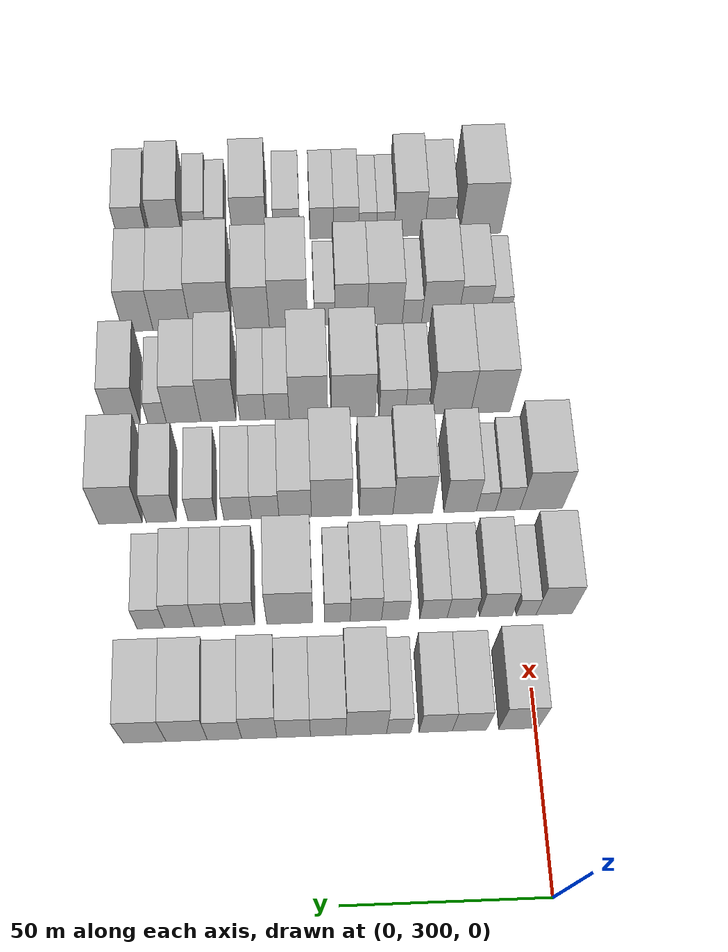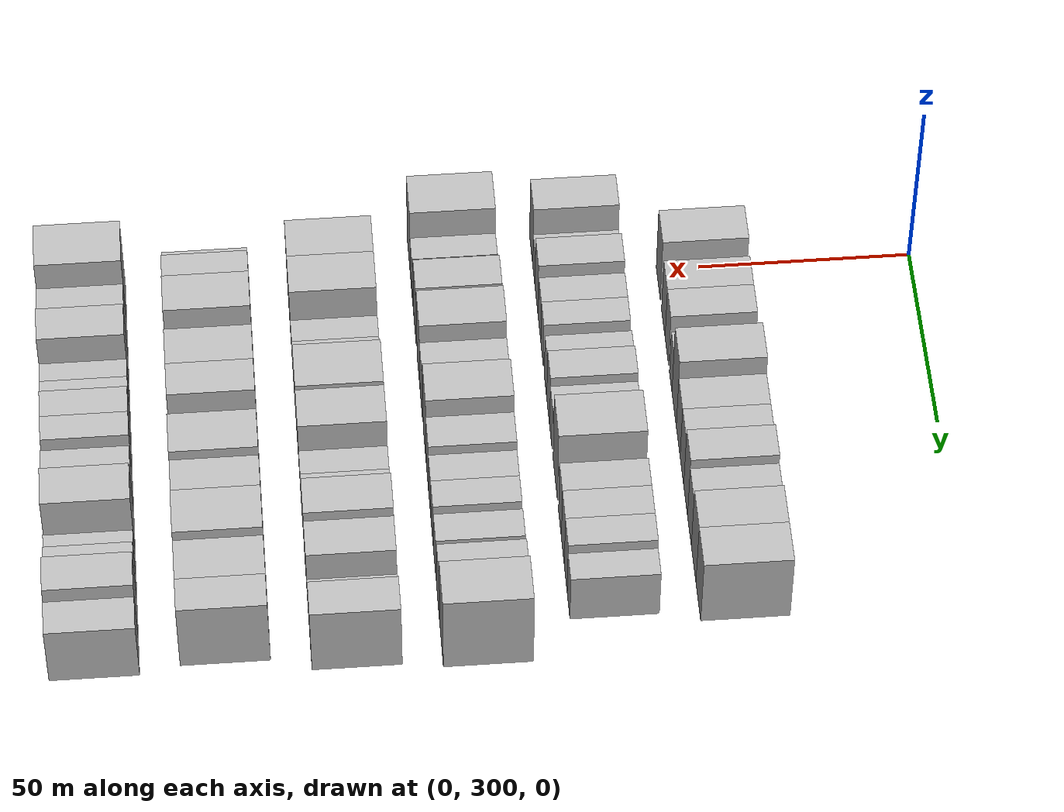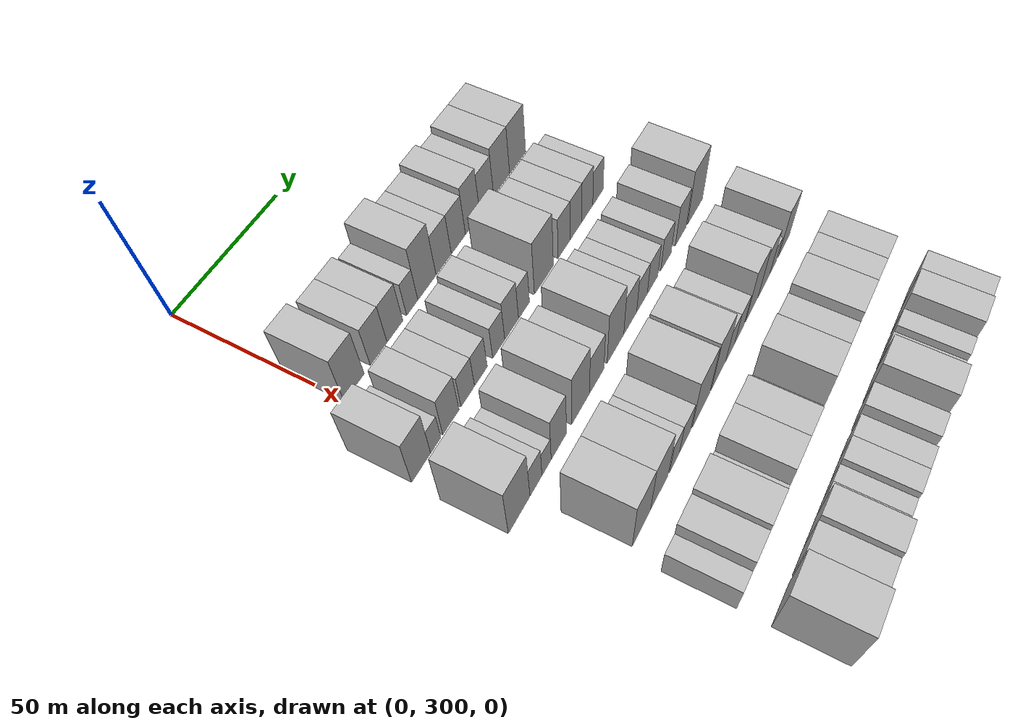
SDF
<sdf version="1.6">
 <world name="default">
  <model name="building_86">
   <static>1</static>
   <pose>50.0000 304.2999 0 0.000000 0.000000 0.000000</pose>
   <link name="link">
    <pose>0 0 10.50 0 0 0</pose>
    <collision name="collision"><geometry><box><size>20.0000 9.7754 21.0000</size></box></geometry></collision>
    <visual name="visual">
     <cast_shadows>0</cast_shadows>
     <geometry><box><size>20.0000 9.7754 21.0000</size></box></geometry>
     <material>
      <script>
       <uri>model://HANNAS_wall/materials/scripts</uri>
       <uri>model://HANNAS_wall/materials/textures</uri>
       <name>vrc/HANNAS_wall</name>
      </script>
     </material>
    </visual>
   </link>
  </model>
  <model name="building_87">
   <static>1</static>
   <pose>50.0000 316.4137 0 0.000000 0.000000 0.000000</pose>
   <link name="link">
    <pose>0 0 9.00 0 0 0</pose>
    <collision name="collision"><geometry><box><size>20.0000 8.4521 18.0000</size></box></geometry></collision>
    <visual name="visual">
     <cast_shadows>0</cast_shadows>
     <geometry><box><size>20.0000 8.4521 18.0000</size></box></geometry>
     <material>
      <script>
       <uri>model://HANNAS_wall/materials/scripts</uri>
       <uri>model://HANNAS_wall/materials/textures</uri>
       <name>vrc/HANNAS_wall</name>
      </script>
     </material>
    </visual>
   </link>
  </model>
  <model name="building_88">
   <static>1</static>
   <pose>50.0000 324.7240 0 0.000000 0.000000 0.000000</pose>
   <link name="link">
    <pose>0 0 9.00 0 0 0</pose>
    <collision name="collision"><geometry><box><size>20.0000 8.1686 18.0000</size></box></geometry></collision>
    <visual name="visual">
     <cast_shadows>0</cast_shadows>
     <geometry><box><size>20.0000 8.1686 18.0000</size></box></geometry>
     <material>
      <script>
       <uri>model://HANNAS_wall/materials/scripts</uri>
       <uri>model://HANNAS_wall/materials/textures</uri>
       <name>vrc/HANNAS_wall</name>
      </script>
     </material>
    </visual>
   </link>
  </model>
  <model name="building_89">
   <static>1</static>
   <pose>50.0000 333.8086 0 0.000000 0.000000 0.000000</pose>
   <link name="link">
    <pose>0 0 7.50 0 0 0</pose>
    <collision name="collision"><geometry><box><size>20.0000 6.0006 15.0000</size></box></geometry></collision>
    <visual name="visual">
     <cast_shadows>0</cast_shadows>
     <geometry><box><size>20.0000 6.0006 15.0000</size></box></geometry>
     <material>
      <script>
       <uri>model://HANNAS_wall/materials/scripts</uri>
       <uri>model://HANNAS_wall/materials/textures</uri>
       <name>vrc/HANNAS_wall</name>
      </script>
     </material>
    </visual>
   </link>
  </model>
  <model name="building_90">
   <static>1</static>
   <pose>50.0000 341.8027 0 0.000000 0.000000 0.000000</pose>
   <link name="link">
    <pose>0 0 12.00 0 0 0</pose>
    <collision name="collision"><geometry><box><size>20.0000 9.9874 24.0000</size></box></geometry></collision>
    <visual name="visual">
     <cast_shadows>0</cast_shadows>
     <geometry><box><size>20.0000 9.9874 24.0000</size></box></geometry>
     <material>
      <script>
       <uri>model://HANNAS_wall/materials/scripts</uri>
       <uri>model://HANNAS_wall/materials/textures</uri>
       <name>vrc/HANNAS_wall</name>
      </script>
     </material>
    </visual>
   </link>
  </model>
  <model name="building_91">
   <static>1</static>
   <pose>50.0000 351.1413 0 0.000000 0.000000 0.000000</pose>
   <link name="link">
    <pose>0 0 9.00 0 0 0</pose>
    <collision name="collision"><geometry><box><size>20.0000 8.6898 18.0000</size></box></geometry></collision>
    <visual name="visual">
     <cast_shadows>0</cast_shadows>
     <geometry><box><size>20.0000 8.6898 18.0000</size></box></geometry>
     <material>
      <script>
       <uri>model://HANNAS_wall/materials/scripts</uri>
       <uri>model://HANNAS_wall/materials/textures</uri>
       <name>vrc/HANNAS_wall</name>
      </script>
     </material>
    </visual>
   </link>
  </model>
  <model name="building_92">
   <static>1</static>
   <pose>50.0000 359.5965 0 0.000000 0.000000 0.000000</pose>
   <link name="link">
    <pose>0 0 9.00 0 0 0</pose>
    <collision name="collision"><geometry><box><size>20.0000 8.2205 18.0000</size></box></geometry></collision>
    <visual name="visual">
     <cast_shadows>0</cast_shadows>
     <geometry><box><size>20.0000 8.2205 18.0000</size></box></geometry>
     <material>
      <script>
       <uri>model://HANNAS_wall/materials/scripts</uri>
       <uri>model://HANNAS_wall/materials/textures</uri>
       <name>vrc/HANNAS_wall</name>
      </script>
     </material>
    </visual>
   </link>
  </model>
  <model name="building_93">
   <static>1</static>
   <pose>50.0000 368.0203 0 0.000000 0.000000 0.000000</pose>
   <link name="link">
    <pose>0 0 10.50 0 0 0</pose>
    <collision name="collision"><geometry><box><size>20.0000 8.6271 21.0000</size></box></geometry></collision>
    <visual name="visual">
     <cast_shadows>0</cast_shadows>
     <geometry><box><size>20.0000 8.6271 21.0000</size></box></geometry>
     <material>
      <script>
       <uri>model://HANNAS_wall/materials/scripts</uri>
       <uri>model://HANNAS_wall/materials/textures</uri>
       <name>vrc/HANNAS_wall</name>
      </script>
     </material>
    </visual>
   </link>
  </model>
  <model name="building_94">
   <static>1</static>
   <pose>50.0000 376.5453 0 0.000000 0.000000 0.000000</pose>
   <link name="link">
    <pose>0 0 9.00 0 0 0</pose>
    <collision name="collision"><geometry><box><size>20.0000 8.4230 18.0000</size></box></geometry></collision>
    <visual name="visual">
     <cast_shadows>0</cast_shadows>
     <geometry><box><size>20.0000 8.4230 18.0000</size></box></geometry>
     <material>
      <script>
       <uri>model://HANNAS_wall/materials/scripts</uri>
       <uri>model://HANNAS_wall/materials/textures</uri>
       <name>vrc/HANNAS_wall</name>
      </script>
     </material>
    </visual>
   </link>
  </model>
  <model name="building_95">
   <static>1</static>
   <pose>50.0000 385.8042 0 0.000000 0.000000 0.000000</pose>
   <link name="link">
    <pose>0 0 10.50 0 0 0</pose>
    <collision name="collision"><geometry><box><size>20.0000 10.0947 21.0000</size></box></geometry></collision>
    <visual name="visual">
     <cast_shadows>0</cast_shadows>
     <geometry><box><size>20.0000 10.0947 21.0000</size></box></geometry>
     <material>
      <script>
       <uri>model://HANNAS_wall/materials/scripts</uri>
       <uri>model://HANNAS_wall/materials/textures</uri>
       <name>vrc/HANNAS_wall</name>
      </script>
     </material>
    </visual>
   </link>
  </model>
  <model name="building_96">
   <static>1</static>
   <pose>50.0000 396.0586 0 0.000000 0.000000 0.000000</pose>
   <link name="link">
    <pose>0 0 10.50 0 0 0</pose>
    <collision name="collision"><geometry><box><size>20.0000 10.4143 21.0000</size></box></geometry></collision>
    <visual name="visual">
     <cast_shadows>0</cast_shadows>
     <geometry><box><size>20.0000 10.4143 21.0000</size></box></geometry>
     <material>
      <script>
       <uri>model://HANNAS_wall/materials/scripts</uri>
       <uri>model://HANNAS_wall/materials/textures</uri>
       <name>vrc/HANNAS_wall</name>
      </script>
     </material>
    </visual>
   </link>
  </model>
  <model name="building_195">
   <static>1</static>
   <pose>79.0000 292.4236 0 0.000000 0.000000 0.000000</pose>
   <link name="link">
    <pose>0 0 10.50 0 0 0</pose>
    <collision name="collision"><geometry><box><size>20.0000 9.3064 21.0000</size></box></geometry></collision>
    <visual name="visual">
     <cast_shadows>0</cast_shadows>
     <geometry><box><size>20.0000 9.3064 21.0000</size></box></geometry>
     <material>
      <script>
       <uri>model://HANNAS_wall/materials/scripts</uri>
       <uri>model://HANNAS_wall/materials/textures</uri>
       <name>vrc/HANNAS_wall</name>
      </script>
     </material>
    </visual>
   </link>
  </model>
  <model name="building_196">
   <static>1</static>
   <pose>79.0000 299.6232 0 0.000000 0.000000 0.000000</pose>
   <link name="link">
    <pose>0 0 6.00 0 0 0</pose>
    <collision name="collision"><geometry><box><size>20.0000 5.0929 12.0000</size></box></geometry></collision>
    <visual name="visual">
     <cast_shadows>0</cast_shadows>
     <geometry><box><size>20.0000 5.0929 12.0000</size></box></geometry>
     <material>
      <script>
       <uri>model://HANNAS_wall/materials/scripts</uri>
       <uri>model://HANNAS_wall/materials/textures</uri>
       <name>vrc/HANNAS_wall</name>
      </script>
     </material>
    </visual>
   </link>
  </model>
  <model name="building_197">
   <static>1</static>
   <pose>79.0000 307.3572 0 0.000000 0.000000 0.000000</pose>
   <link name="link">
    <pose>0 0 9.00 0 0 0</pose>
    <collision name="collision"><geometry><box><size>20.0000 8.3751 18.0000</size></box></geometry></collision>
    <visual name="visual">
     <cast_shadows>0</cast_shadows>
     <geometry><box><size>20.0000 8.3751 18.0000</size></box></geometry>
     <material>
      <script>
       <uri>model://HANNAS_wall/materials/scripts</uri>
       <uri>model://HANNAS_wall/materials/textures</uri>
       <name>vrc/HANNAS_wall</name>
      </script>
     </material>
    </visual>
   </link>
  </model>
  <model name="building_198">
   <static>1</static>
   <pose>79.0000 316.1642 0 0.000000 0.000000 0.000000</pose>
   <link name="link">
    <pose>0 0 7.50 0 0 0</pose>
    <collision name="collision"><geometry><box><size>20.0000 7.2389 15.0000</size></box></geometry></collision>
    <visual name="visual">
     <cast_shadows>0</cast_shadows>
     <geometry><box><size>20.0000 7.2389 15.0000</size></box></geometry>
     <material>
      <script>
       <uri>model://HANNAS_wall/materials/scripts</uri>
       <uri>model://HANNAS_wall/materials/textures</uri>
       <name>vrc/HANNAS_wall</name>
      </script>
     </material>
    </visual>
   </link>
  </model>
  <model name="building_199">
   <static>1</static>
   <pose>79.0000 323.2589 0 0.000000 0.000000 0.000000</pose>
   <link name="link">
    <pose>0 0 7.50 0 0 0</pose>
    <collision name="collision"><geometry><box><size>20.0000 6.9505 15.0000</size></box></geometry></collision>
    <visual name="visual">
     <cast_shadows>0</cast_shadows>
     <geometry><box><size>20.0000 6.9505 15.0000</size></box></geometry>
     <material>
      <script>
       <uri>model://HANNAS_wall/materials/scripts</uri>
       <uri>model://HANNAS_wall/materials/textures</uri>
       <name>vrc/HANNAS_wall</name>
      </script>
     </material>
    </visual>
   </link>
  </model>
  <model name="building_200">
   <static>1</static>
   <pose>79.0000 333.1374 0 0.000000 0.000000 0.000000</pose>
   <link name="link">
    <pose>0 0 7.50 0 0 0</pose>
    <collision name="collision"><geometry><box><size>20.0000 6.8064 15.0000</size></box></geometry></collision>
    <visual name="visual">
     <cast_shadows>0</cast_shadows>
     <geometry><box><size>20.0000 6.8064 15.0000</size></box></geometry>
     <material>
      <script>
       <uri>model://HANNAS_wall/materials/scripts</uri>
       <uri>model://HANNAS_wall/materials/textures</uri>
       <name>vrc/HANNAS_wall</name>
      </script>
     </material>
    </visual>
   </link>
  </model>
  <model name="building_201">
   <static>1</static>
   <pose>79.0000 340.5213 0 0.000000 0.000000 0.000000</pose>
   <link name="link">
    <pose>0 0 9.00 0 0 0</pose>
    <collision name="collision"><geometry><box><size>20.0000 7.9613 18.0000</size></box></geometry></collision>
    <visual name="visual">
     <cast_shadows>0</cast_shadows>
     <geometry><box><size>20.0000 7.9613 18.0000</size></box></geometry>
     <material>
      <script>
       <uri>model://HANNAS_wall/materials/scripts</uri>
       <uri>model://HANNAS_wall/materials/textures</uri>
       <name>vrc/HANNAS_wall</name>
      </script>
     </material>
    </visual>
   </link>
  </model>
  <model name="building_202">
   <static>1</static>
   <pose>79.0000 347.7429 0 0.000000 0.000000 0.000000</pose>
   <link name="link">
    <pose>0 0 7.50 0 0 0</pose>
    <collision name="collision"><geometry><box><size>20.0000 6.4820 15.0000</size></box></geometry></collision>
    <visual name="visual">
     <cast_shadows>0</cast_shadows>
     <geometry><box><size>20.0000 6.4820 15.0000</size></box></geometry>
     <material>
      <script>
       <uri>model://HANNAS_wall/materials/scripts</uri>
       <uri>model://HANNAS_wall/materials/textures</uri>
       <name>vrc/HANNAS_wall</name>
      </script>
     </material>
    </visual>
   </link>
  </model>
  <model name="building_203">
   <static>1</static>
   <pose>79.0000 359.8309 0 0.000000 0.000000 0.000000</pose>
   <link name="link">
    <pose>0 0 12.00 0 0 0</pose>
    <collision name="collision"><geometry><box><size>20.0000 11.6941 24.0000</size></box></geometry></collision>
    <visual name="visual">
     <cast_shadows>0</cast_shadows>
     <geometry><box><size>20.0000 11.6941 24.0000</size></box></geometry>
     <material>
      <script>
       <uri>model://HANNAS_wall/materials/scripts</uri>
       <uri>model://HANNAS_wall/materials/textures</uri>
       <name>vrc/HANNAS_wall</name>
      </script>
     </material>
    </visual>
   </link>
  </model>
  <model name="building_204">
   <static>1</static>
   <pose>79.0000 372.4950 0 0.000000 0.000000 0.000000</pose>
   <link name="link">
    <pose>0 0 9.00 0 0 0</pose>
    <collision name="collision"><geometry><box><size>20.0000 7.6340 18.0000</size></box></geometry></collision>
    <visual name="visual">
     <cast_shadows>0</cast_shadows>
     <geometry><box><size>20.0000 7.6340 18.0000</size></box></geometry>
     <material>
      <script>
       <uri>model://HANNAS_wall/materials/scripts</uri>
       <uri>model://HANNAS_wall/materials/textures</uri>
       <name>vrc/HANNAS_wall</name>
      </script>
     </material>
    </visual>
   </link>
  </model>
  <model name="building_205">
   <static>1</static>
   <pose>79.0000 380.1694 0 0.000000 0.000000 0.000000</pose>
   <link name="link">
    <pose>0 0 9.00 0 0 0</pose>
    <collision name="collision"><geometry><box><size>20.0000 7.7148 18.0000</size></box></geometry></collision>
    <visual name="visual">
     <cast_shadows>0</cast_shadows>
     <geometry><box><size>20.0000 7.7148 18.0000</size></box></geometry>
     <material>
      <script>
       <uri>model://HANNAS_wall/materials/scripts</uri>
       <uri>model://HANNAS_wall/materials/textures</uri>
       <name>vrc/HANNAS_wall</name>
      </script>
     </material>
    </visual>
   </link>
  </model>
  <model name="building_206">
   <static>1</static>
   <pose>79.0000 387.7678 0 0.000000 0.000000 0.000000</pose>
   <link name="link">
    <pose>0 0 9.00 0 0 0</pose>
    <collision name="collision"><geometry><box><size>20.0000 7.4821 18.0000</size></box></geometry></collision>
    <visual name="visual">
     <cast_shadows>0</cast_shadows>
     <geometry><box><size>20.0000 7.4821 18.0000</size></box></geometry>
     <material>
      <script>
       <uri>model://HANNAS_wall/materials/scripts</uri>
       <uri>model://HANNAS_wall/materials/textures</uri>
       <name>vrc/HANNAS_wall</name>
      </script>
     </material>
    </visual>
   </link>
  </model>
  <model name="building_207">
   <static>1</static>
   <pose>79.0000 395.0635 0 0.000000 0.000000 0.000000</pose>
   <link name="link">
    <pose>0 0 7.50 0 0 0</pose>
    <collision name="collision"><geometry><box><size>20.0000 7.1094 15.0000</size></box></geometry></collision>
    <visual name="visual">
     <cast_shadows>0</cast_shadows>
     <geometry><box><size>20.0000 7.1094 15.0000</size></box></geometry>
     <material>
      <script>
       <uri>model://HANNAS_wall/materials/scripts</uri>
       <uri>model://HANNAS_wall/materials/textures</uri>
       <name>vrc/HANNAS_wall</name>
      </script>
     </material>
    </visual>
   </link>
  </model>
  <model name="building_310">
   <static>1</static>
   <pose>108.0000 292.7920 0 0.000000 0.000000 0.000000</pose>
   <link name="link">
    <pose>0 0 12.00 0 0 0</pose>
    <collision name="collision"><geometry><box><size>20.0000 11.2679 24.0000</size></box></geometry></collision>
    <visual name="visual">
     <cast_shadows>0</cast_shadows>
     <geometry><box><size>20.0000 11.2679 24.0000</size></box></geometry>
     <material>
      <script>
       <uri>model://HANNAS_wall/materials/scripts</uri>
       <uri>model://HANNAS_wall/materials/textures</uri>
       <name>vrc/HANNAS_wall</name>
      </script>
     </material>
    </visual>
   </link>
  </model>
  <model name="building_311">
   <static>1</static>
   <pose>108.0000 301.6471 0 0.000000 0.000000 0.000000</pose>
   <link name="link">
    <pose>0 0 7.50 0 0 0</pose>
    <collision name="collision"><geometry><box><size>20.0000 6.4422 15.0000</size></box></geometry></collision>
    <visual name="visual">
     <cast_shadows>0</cast_shadows>
     <geometry><box><size>20.0000 6.4422 15.0000</size></box></geometry>
     <material>
      <script>
       <uri>model://HANNAS_wall/materials/scripts</uri>
       <uri>model://HANNAS_wall/materials/textures</uri>
       <name>vrc/HANNAS_wall</name>
      </script>
     </material>
    </visual>
   </link>
  </model>
  <model name="building_312">
   <static>1</static>
   <pose>108.0000 307.4107 0 0.000000 0.000000 0.000000</pose>
   <link name="link">
    <pose>0 0 6.00 0 0 0</pose>
    <collision name="collision"><geometry><box><size>20.0000 5.0852 12.0000</size></box></geometry></collision>
    <visual name="visual">
     <cast_shadows>0</cast_shadows>
     <geometry><box><size>20.0000 5.0852 12.0000</size></box></geometry>
     <material>
      <script>
       <uri>model://HANNAS_wall/materials/scripts</uri>
       <uri>model://HANNAS_wall/materials/textures</uri>
       <name>vrc/HANNAS_wall</name>
      </script>
     </material>
    </visual>
   </link>
  </model>
  <model name="building_313">
   <static>1</static>
   <pose>108.0000 314.2510 0 0.000000 0.000000 0.000000</pose>
   <link name="link">
    <pose>0 0 10.50 0 0 0</pose>
    <collision name="collision"><geometry><box><size>20.0000 8.5954 21.0000</size></box></geometry></collision>
    <visual name="visual">
     <cast_shadows>0</cast_shadows>
     <geometry><box><size>20.0000 8.5954 21.0000</size></box></geometry>
     <material>
      <script>
       <uri>model://HANNAS_wall/materials/scripts</uri>
       <uri>model://HANNAS_wall/materials/textures</uri>
       <name>vrc/HANNAS_wall</name>
      </script>
     </material>
    </visual>
   </link>
  </model>
  <model name="building_314">
   <static>1</static>
   <pose>108.0000 326.7822 0 0.000000 0.000000 0.000000</pose>
   <link name="link">
    <pose>0 0 12.00 0 0 0</pose>
    <collision name="collision"><geometry><box><size>20.0000 10.4669 24.0000</size></box></geometry></collision>
    <visual name="visual">
     <cast_shadows>0</cast_shadows>
     <geometry><box><size>20.0000 10.4669 24.0000</size></box></geometry>
     <material>
      <script>
       <uri>model://HANNAS_wall/materials/scripts</uri>
       <uri>model://HANNAS_wall/materials/textures</uri>
       <name>vrc/HANNAS_wall</name>
      </script>
     </material>
    </visual>
   </link>
  </model>
  <model name="building_315">
   <static>1</static>
   <pose>108.0000 336.4530 0 0.000000 0.000000 0.000000</pose>
   <link name="link">
    <pose>0 0 9.00 0 0 0</pose>
    <collision name="collision"><geometry><box><size>20.0000 8.8747 18.0000</size></box></geometry></collision>
    <visual name="visual">
     <cast_shadows>0</cast_shadows>
     <geometry><box><size>20.0000 8.8747 18.0000</size></box></geometry>
     <material>
      <script>
       <uri>model://HANNAS_wall/materials/scripts</uri>
       <uri>model://HANNAS_wall/materials/textures</uri>
       <name>vrc/HANNAS_wall</name>
      </script>
     </material>
    </visual>
   </link>
  </model>
  <model name="building_316">
   <static>1</static>
   <pose>108.0000 348.1840 0 0.000000 0.000000 0.000000</pose>
   <link name="link">
    <pose>0 0 12.00 0 0 0</pose>
    <collision name="collision"><geometry><box><size>20.0000 10.5873 24.0000</size></box></geometry></collision>
    <visual name="visual">
     <cast_shadows>0</cast_shadows>
     <geometry><box><size>20.0000 10.5873 24.0000</size></box></geometry>
     <material>
      <script>
       <uri>model://HANNAS_wall/materials/scripts</uri>
       <uri>model://HANNAS_wall/materials/textures</uri>
       <name>vrc/HANNAS_wall</name>
      </script>
     </material>
    </visual>
   </link>
  </model>
  <model name="building_317">
   <static>1</static>
   <pose>108.0000 357.7196 0 0.000000 0.000000 0.000000</pose>
   <link name="link">
    <pose>0 0 9.00 0 0 0</pose>
    <collision name="collision"><geometry><box><size>20.0000 8.4839 18.0000</size></box></geometry></collision>
    <visual name="visual">
     <cast_shadows>0</cast_shadows>
     <geometry><box><size>20.0000 8.4839 18.0000</size></box></geometry>
     <material>
      <script>
       <uri>model://HANNAS_wall/materials/scripts</uri>
       <uri>model://HANNAS_wall/materials/textures</uri>
       <name>vrc/HANNAS_wall</name>
      </script>
     </material>
    </visual>
   </link>
  </model>
  <model name="building_318">
   <static>1</static>
   <pose>108.0000 365.5766 0 0.000000 0.000000 0.000000</pose>
   <link name="link">
    <pose>0 0 7.50 0 0 0</pose>
    <collision name="collision"><geometry><box><size>20.0000 7.2301 15.0000</size></box></geometry></collision>
    <visual name="visual">
     <cast_shadows>0</cast_shadows>
     <geometry><box><size>20.0000 7.2301 15.0000</size></box></geometry>
     <material>
      <script>
       <uri>model://HANNAS_wall/materials/scripts</uri>
       <uri>model://HANNAS_wall/materials/textures</uri>
       <name>vrc/HANNAS_wall</name>
      </script>
     </material>
    </visual>
   </link>
  </model>
  <model name="building_319">
   <static>1</static>
   <pose>108.0000 372.8271 0 0.000000 0.000000 0.000000</pose>
   <link name="link">
    <pose>0 0 7.50 0 0 0</pose>
    <collision name="collision"><geometry><box><size>20.0000 7.2710 15.0000</size></box></geometry></collision>
    <visual name="visual">
     <cast_shadows>0</cast_shadows>
     <geometry><box><size>20.0000 7.2710 15.0000</size></box></geometry>
     <material>
      <script>
       <uri>model://HANNAS_wall/materials/scripts</uri>
       <uri>model://HANNAS_wall/materials/textures</uri>
       <name>vrc/HANNAS_wall</name>
      </script>
     </material>
    </visual>
   </link>
  </model>
  <model name="building_320">
   <static>1</static>
   <pose>108.0000 382.1943 0 0.000000 0.000000 0.000000</pose>
   <link name="link">
    <pose>0 0 7.50 0 0 0</pose>
    <collision name="collision"><geometry><box><size>20.0000 7.4633 15.0000</size></box></geometry></collision>
    <visual name="visual">
     <cast_shadows>0</cast_shadows>
     <geometry><box><size>20.0000 7.4633 15.0000</size></box></geometry>
     <material>
      <script>
       <uri>model://HANNAS_wall/materials/scripts</uri>
       <uri>model://HANNAS_wall/materials/textures</uri>
       <name>vrc/HANNAS_wall</name>
      </script>
     </material>
    </visual>
   </link>
  </model>
  <model name="building_321">
   <static>1</static>
   <pose>108.0000 392.9289 0 0.000000 0.000000 0.000000</pose>
   <link name="link">
    <pose>0 0 9.00 0 0 0</pose>
    <collision name="collision"><geometry><box><size>20.0000 8.0060 18.0000</size></box></geometry></collision>
    <visual name="visual">
     <cast_shadows>0</cast_shadows>
     <geometry><box><size>20.0000 8.0060 18.0000</size></box></geometry>
     <material>
      <script>
       <uri>model://HANNAS_wall/materials/scripts</uri>
       <uri>model://HANNAS_wall/materials/textures</uri>
       <name>vrc/HANNAS_wall</name>
      </script>
     </material>
    </visual>
   </link>
  </model>
  <model name="building_322">
   <static>1</static>
   <pose>108.0000 403.6546 0 0.000000 0.000000 0.000000</pose>
   <link name="link">
    <pose>0 0 12.00 0 0 0</pose>
    <collision name="collision"><geometry><box><size>20.0000 11.4454 24.0000</size></box></geometry></collision>
    <visual name="visual">
     <cast_shadows>0</cast_shadows>
     <geometry><box><size>20.0000 11.4454 24.0000</size></box></geometry>
     <material>
      <script>
       <uri>model://HANNAS_wall/materials/scripts</uri>
       <uri>model://HANNAS_wall/materials/textures</uri>
       <name>vrc/HANNAS_wall</name>
      </script>
     </material>
    </visual>
   </link>
  </model>
  <model name="building_421">
   <static>1</static>
   <pose>137.0000 303.7737 0 0.000000 0.000000 0.000000</pose>
   <link name="link">
    <pose>0 0 12.00 0 0 0</pose>
    <collision name="collision"><geometry><box><size>20.0000 10.7200 24.0000</size></box></geometry></collision>
    <visual name="visual">
     <cast_shadows>0</cast_shadows>
     <geometry><box><size>20.0000 10.7200 24.0000</size></box></geometry>
     <material>
      <script>
       <uri>model://HANNAS_wall/materials/scripts</uri>
       <uri>model://HANNAS_wall/materials/textures</uri>
       <name>vrc/HANNAS_wall</name>
      </script>
     </material>
    </visual>
   </link>
  </model>
  <model name="building_422">
   <static>1</static>
   <pose>137.0000 314.5030 0 0.000000 0.000000 0.000000</pose>
   <link name="link">
    <pose>0 0 12.00 0 0 0</pose>
    <collision name="collision"><geometry><box><size>20.0000 10.7385 24.0000</size></box></geometry></collision>
    <visual name="visual">
     <cast_shadows>0</cast_shadows>
     <geometry><box><size>20.0000 10.7385 24.0000</size></box></geometry>
     <material>
      <script>
       <uri>model://HANNAS_wall/materials/scripts</uri>
       <uri>model://HANNAS_wall/materials/textures</uri>
       <name>vrc/HANNAS_wall</name>
      </script>
     </material>
    </visual>
   </link>
  </model>
  <model name="building_423">
   <static>1</static>
   <pose>137.0000 323.9694 0 0.000000 0.000000 0.000000</pose>
   <link name="link">
    <pose>0 0 7.50 0 0 0</pose>
    <collision name="collision"><geometry><box><size>20.0000 6.1944 15.0000</size></box></geometry></collision>
    <visual name="visual">
     <cast_shadows>0</cast_shadows>
     <geometry><box><size>20.0000 6.1944 15.0000</size></box></geometry>
     <material>
      <script>
       <uri>model://HANNAS_wall/materials/scripts</uri>
       <uri>model://HANNAS_wall/materials/textures</uri>
       <name>vrc/HANNAS_wall</name>
      </script>
     </material>
    </visual>
   </link>
  </model>
  <model name="building_424">
   <static>1</static>
   <pose>137.0000 330.6239 0 0.000000 0.000000 0.000000</pose>
   <link name="link">
    <pose>0 0 7.50 0 0 0</pose>
    <collision name="collision"><geometry><box><size>20.0000 7.1146 15.0000</size></box></geometry></collision>
    <visual name="visual">
     <cast_shadows>0</cast_shadows>
     <geometry><box><size>20.0000 7.1146 15.0000</size></box></geometry>
     <material>
      <script>
       <uri>model://HANNAS_wall/materials/scripts</uri>
       <uri>model://HANNAS_wall/materials/textures</uri>
       <name>vrc/HANNAS_wall</name>
      </script>
     </material>
    </visual>
   </link>
  </model>
  <model name="building_425">
   <static>1</static>
   <pose>137.0000 341.1803 0 0.000000 0.000000 0.000000</pose>
   <link name="link">
    <pose>0 0 12.00 0 0 0</pose>
    <collision name="collision"><geometry><box><size>20.0000 11.9981 24.0000</size></box></geometry></collision>
    <visual name="visual">
     <cast_shadows>0</cast_shadows>
     <geometry><box><size>20.0000 11.9981 24.0000</size></box></geometry>
     <material>
      <script>
       <uri>model://HANNAS_wall/materials/scripts</uri>
       <uri>model://HANNAS_wall/materials/textures</uri>
       <name>vrc/HANNAS_wall</name>
      </script>
     </material>
    </visual>
   </link>
  </model>
  <model name="building_426">
   <static>1</static>
   <pose>137.0000 353.3787 0 0.000000 0.000000 0.000000</pose>
   <link name="link">
    <pose>0 0 12.00 0 0 0</pose>
    <collision name="collision"><geometry><box><size>20.0000 10.3987 24.0000</size></box></geometry></collision>
    <visual name="visual">
     <cast_shadows>0</cast_shadows>
     <geometry><box><size>20.0000 10.3987 24.0000</size></box></geometry>
     <material>
      <script>
       <uri>model://HANNAS_wall/materials/scripts</uri>
       <uri>model://HANNAS_wall/materials/textures</uri>
       <name>vrc/HANNAS_wall</name>
      </script>
     </material>
    </visual>
   </link>
  </model>
  <model name="building_427">
   <static>1</static>
   <pose>137.0000 361.8306 0 0.000000 0.000000 0.000000</pose>
   <link name="link">
    <pose>0 0 7.50 0 0 0</pose>
    <collision name="collision"><geometry><box><size>20.0000 6.5052 15.0000</size></box></geometry></collision>
    <visual name="visual">
     <cast_shadows>0</cast_shadows>
     <geometry><box><size>20.0000 6.5052 15.0000</size></box></geometry>
     <material>
      <script>
       <uri>model://HANNAS_wall/materials/scripts</uri>
       <uri>model://HANNAS_wall/materials/textures</uri>
       <name>vrc/HANNAS_wall</name>
      </script>
     </material>
    </visual>
   </link>
  </model>
  <model name="building_428">
   <static>1</static>
   <pose>137.0000 368.5501 0 0.000000 0.000000 0.000000</pose>
   <link name="link">
    <pose>0 0 7.50 0 0 0</pose>
    <collision name="collision"><geometry><box><size>20.0000 6.9338 15.0000</size></box></geometry></collision>
    <visual name="visual">
     <cast_shadows>0</cast_shadows>
     <geometry><box><size>20.0000 6.9338 15.0000</size></box></geometry>
     <material>
      <script>
       <uri>model://HANNAS_wall/materials/scripts</uri>
       <uri>model://HANNAS_wall/materials/textures</uri>
       <name>vrc/HANNAS_wall</name>
      </script>
     </material>
    </visual>
   </link>
  </model>
  <model name="building_429">
   <static>1</static>
   <pose>137.0000 377.8222 0 0.000000 0.000000 0.000000</pose>
   <link name="link">
    <pose>0 0 12.00 0 0 0</pose>
    <collision name="collision"><geometry><box><size>20.0000 9.6104 24.0000</size></box></geometry></collision>
    <visual name="visual">
     <cast_shadows>0</cast_shadows>
     <geometry><box><size>20.0000 9.6104 24.0000</size></box></geometry>
     <material>
      <script>
       <uri>model://HANNAS_wall/materials/scripts</uri>
       <uri>model://HANNAS_wall/materials/textures</uri>
       <name>vrc/HANNAS_wall</name>
      </script>
     </material>
    </visual>
   </link>
  </model>
  <model name="building_430">
   <static>1</static>
   <pose>137.0000 387.3258 0 0.000000 0.000000 0.000000</pose>
   <link name="link">
    <pose>0 0 10.50 0 0 0</pose>
    <collision name="collision"><geometry><box><size>20.0000 9.3968 21.0000</size></box></geometry></collision>
    <visual name="visual">
     <cast_shadows>0</cast_shadows>
     <geometry><box><size>20.0000 9.3968 21.0000</size></box></geometry>
     <material>
      <script>
       <uri>model://HANNAS_wall/materials/scripts</uri>
       <uri>model://HANNAS_wall/materials/textures</uri>
       <name>vrc/HANNAS_wall</name>
      </script>
     </material>
    </visual>
   </link>
  </model>
  <model name="building_431">
   <static>1</static>
   <pose>137.0000 394.5674 0 0.000000 0.000000 0.000000</pose>
   <link name="link">
    <pose>0 0 6.00 0 0 0</pose>
    <collision name="collision"><geometry><box><size>20.0000 5.0863 12.0000</size></box></geometry></collision>
    <visual name="visual">
     <cast_shadows>0</cast_shadows>
     <geometry><box><size>20.0000 5.0863 12.0000</size></box></geometry>
     <material>
      <script>
       <uri>model://HANNAS_wall/materials/scripts</uri>
       <uri>model://HANNAS_wall/materials/textures</uri>
       <name>vrc/HANNAS_wall</name>
      </script>
     </material>
    </visual>
   </link>
  </model>
  <model name="building_432">
   <static>1</static>
   <pose>137.0000 403.5548 0 0.000000 0.000000 0.000000</pose>
   <link name="link">
    <pose>0 0 10.50 0 0 0</pose>
    <collision name="collision"><geometry><box><size>20.0000 8.8886 21.0000</size></box></geometry></collision>
    <visual name="visual">
     <cast_shadows>0</cast_shadows>
     <geometry><box><size>20.0000 8.8886 21.0000</size></box></geometry>
     <material>
      <script>
       <uri>model://HANNAS_wall/materials/scripts</uri>
       <uri>model://HANNAS_wall/materials/textures</uri>
       <name>vrc/HANNAS_wall</name>
      </script>
     </material>
    </visual>
   </link>
  </model>
  <model name="building_535">
   <static>1</static>
   <pose>166.0000 298.8325 0 0.000000 0.000000 0.000000</pose>
   <link name="link">
    <pose>0 0 6.00 0 0 0</pose>
    <collision name="collision"><geometry><box><size>20.0000 5.7707 12.0000</size></box></geometry></collision>
    <visual name="visual">
     <cast_shadows>0</cast_shadows>
     <geometry><box><size>20.0000 5.7707 12.0000</size></box></geometry>
     <material>
      <script>
       <uri>model://HANNAS_wall/materials/scripts</uri>
       <uri>model://HANNAS_wall/materials/textures</uri>
       <name>vrc/HANNAS_wall</name>
      </script>
     </material>
    </visual>
   </link>
  </model>
  <model name="building_536">
   <static>1</static>
   <pose>166.0000 306.0540 0 0.000000 0.000000 0.000000</pose>
   <link name="link">
    <pose>0 0 9.00 0 0 0</pose>
    <collision name="collision"><geometry><box><size>20.0000 8.6723 18.0000</size></box></geometry></collision>
    <visual name="visual">
     <cast_shadows>0</cast_shadows>
     <geometry><box><size>20.0000 8.6723 18.0000</size></box></geometry>
     <material>
      <script>
       <uri>model://HANNAS_wall/materials/scripts</uri>
       <uri>model://HANNAS_wall/materials/textures</uri>
       <name>vrc/HANNAS_wall</name>
      </script>
     </material>
    </visual>
   </link>
  </model>
  <model name="building_537">
   <static>1</static>
   <pose>166.0000 315.5216 0 0.000000 0.000000 0.000000</pose>
   <link name="link">
    <pose>0 0 10.50 0 0 0</pose>
    <collision name="collision"><geometry><box><size>20.0000 10.2628 21.0000</size></box></geometry></collision>
    <visual name="visual">
     <cast_shadows>0</cast_shadows>
     <geometry><box><size>20.0000 10.2628 21.0000</size></box></geometry>
     <material>
      <script>
       <uri>model://HANNAS_wall/materials/scripts</uri>
       <uri>model://HANNAS_wall/materials/textures</uri>
       <name>vrc/HANNAS_wall</name>
      </script>
     </material>
    </visual>
   </link>
  </model>
  <model name="building_538">
   <static>1</static>
   <pose>166.0000 323.3782 0 0.000000 0.000000 0.000000</pose>
   <link name="link">
    <pose>0 0 6.00 0 0 0</pose>
    <collision name="collision"><geometry><box><size>20.0000 5.4504 12.0000</size></box></geometry></collision>
    <visual name="visual">
     <cast_shadows>0</cast_shadows>
     <geometry><box><size>20.0000 5.4504 12.0000</size></box></geometry>
     <material>
      <script>
       <uri>model://HANNAS_wall/materials/scripts</uri>
       <uri>model://HANNAS_wall/materials/textures</uri>
       <name>vrc/HANNAS_wall</name>
      </script>
     </material>
    </visual>
   </link>
  </model>
  <model name="building_539">
   <static>1</static>
   <pose>166.0000 331.0873 0 0.000000 0.000000 0.000000</pose>
   <link name="link">
    <pose>0 0 10.50 0 0 0</pose>
    <collision name="collision"><geometry><box><size>20.0000 9.9678 21.0000</size></box></geometry></collision>
    <visual name="visual">
     <cast_shadows>0</cast_shadows>
     <geometry><box><size>20.0000 9.9678 21.0000</size></box></geometry>
     <material>
      <script>
       <uri>model://HANNAS_wall/materials/scripts</uri>
       <uri>model://HANNAS_wall/materials/textures</uri>
       <name>vrc/HANNAS_wall</name>
      </script>
     </material>
    </visual>
   </link>
  </model>
  <model name="building_540">
   <static>1</static>
   <pose>166.0000 340.5752 0 0.000000 0.000000 0.000000</pose>
   <link name="link">
    <pose>0 0 10.50 0 0 0</pose>
    <collision name="collision"><geometry><box><size>20.0000 9.0080 21.0000</size></box></geometry></collision>
    <visual name="visual">
     <cast_shadows>0</cast_shadows>
     <geometry><box><size>20.0000 9.0080 21.0000</size></box></geometry>
     <material>
      <script>
       <uri>model://HANNAS_wall/materials/scripts</uri>
       <uri>model://HANNAS_wall/materials/textures</uri>
       <name>vrc/HANNAS_wall</name>
      </script>
     </material>
    </visual>
   </link>
  </model>
  <model name="building_541">
   <static>1</static>
   <pose>166.0000 347.9382 0 0.000000 0.000000 0.000000</pose>
   <link name="link">
    <pose>0 0 6.00 0 0 0</pose>
    <collision name="collision"><geometry><box><size>20.0000 5.7178 12.0000</size></box></geometry></collision>
    <visual name="visual">
     <cast_shadows>0</cast_shadows>
     <geometry><box><size>20.0000 5.7178 12.0000</size></box></geometry>
     <material>
      <script>
       <uri>model://HANNAS_wall/materials/scripts</uri>
       <uri>model://HANNAS_wall/materials/textures</uri>
       <name>vrc/HANNAS_wall</name>
      </script>
     </material>
    </visual>
   </link>
  </model>
  <model name="building_542">
   <static>1</static>
   <pose>166.0000 358.1588 0 0.000000 0.000000 0.000000</pose>
   <link name="link">
    <pose>0 0 12.00 0 0 0</pose>
    <collision name="collision"><geometry><box><size>20.0000 10.7234 24.0000</size></box></geometry></collision>
    <visual name="visual">
     <cast_shadows>0</cast_shadows>
     <geometry><box><size>20.0000 10.7234 24.0000</size></box></geometry>
     <material>
      <script>
       <uri>model://HANNAS_wall/materials/scripts</uri>
       <uri>model://HANNAS_wall/materials/textures</uri>
       <name>vrc/HANNAS_wall</name>
      </script>
     </material>
    </visual>
   </link>
  </model>
  <model name="building_543">
   <static>1</static>
   <pose>166.0000 368.3177 0 0.000000 0.000000 0.000000</pose>
   <link name="link">
    <pose>0 0 10.50 0 0 0</pose>
    <collision name="collision"><geometry><box><size>20.0000 9.5946 21.0000</size></box></geometry></collision>
    <visual name="visual">
     <cast_shadows>0</cast_shadows>
     <geometry><box><size>20.0000 9.5946 21.0000</size></box></geometry>
     <material>
      <script>
       <uri>model://HANNAS_wall/materials/scripts</uri>
       <uri>model://HANNAS_wall/materials/textures</uri>
       <name>vrc/HANNAS_wall</name>
      </script>
     </material>
    </visual>
   </link>
  </model>
  <model name="building_544">
   <static>1</static>
   <pose>166.0000 379.9058 0 0.000000 0.000000 0.000000</pose>
   <link name="link">
    <pose>0 0 12.00 0 0 0</pose>
    <collision name="collision"><geometry><box><size>20.0000 11.5816 24.0000</size></box></geometry></collision>
    <visual name="visual">
     <cast_shadows>0</cast_shadows>
     <geometry><box><size>20.0000 11.5816 24.0000</size></box></geometry>
     <material>
      <script>
       <uri>model://HANNAS_wall/materials/scripts</uri>
       <uri>model://HANNAS_wall/materials/textures</uri>
       <name>vrc/HANNAS_wall</name>
      </script>
     </material>
    </visual>
   </link>
  </model>
  <model name="building_545">
   <static>1</static>
   <pose>166.0000 390.9235 0 0.000000 0.000000 0.000000</pose>
   <link name="link">
    <pose>0 0 10.50 0 0 0</pose>
    <collision name="collision"><geometry><box><size>20.0000 10.4538 21.0000</size></box></geometry></collision>
    <visual name="visual">
     <cast_shadows>0</cast_shadows>
     <geometry><box><size>20.0000 10.4538 21.0000</size></box></geometry>
     <material>
      <script>
       <uri>model://HANNAS_wall/materials/scripts</uri>
       <uri>model://HANNAS_wall/materials/textures</uri>
       <name>vrc/HANNAS_wall</name>
      </script>
     </material>
    </visual>
   </link>
  </model>
  <model name="building_546">
   <static>1</static>
   <pose>166.0000 400.4179 0 0.000000 0.000000 0.000000</pose>
   <link name="link">
    <pose>0 0 10.50 0 0 0</pose>
    <collision name="collision"><geometry><box><size>20.0000 8.5349 21.0000</size></box></geometry></collision>
    <visual name="visual">
     <cast_shadows>0</cast_shadows>
     <geometry><box><size>20.0000 8.5349 21.0000</size></box></geometry>
     <material>
      <script>
       <uri>model://HANNAS_wall/materials/scripts</uri>
       <uri>model://HANNAS_wall/materials/textures</uri>
       <name>vrc/HANNAS_wall</name>
      </script>
     </material>
    </visual>
   </link>
  </model>
  <model name="building_637">
   <static>1</static>
   <pose>195.0000 301.6650 0 0.000000 0.000000 0.000000</pose>
   <link name="link">
    <pose>0 0 12.00 0 0 0</pose>
    <collision name="collision"><geometry><box><size>20.0000 11.9481 24.0000</size></box></geometry></collision>
    <visual name="visual">
     <cast_shadows>0</cast_shadows>
     <geometry><box><size>20.0000 11.9481 24.0000</size></box></geometry>
     <material>
      <script>
       <uri>model://HANNAS_wall/materials/scripts</uri>
       <uri>model://HANNAS_wall/materials/textures</uri>
       <name>vrc/HANNAS_wall</name>
      </script>
     </material>
    </visual>
   </link>
  </model>
  <model name="building_638">
   <static>1</static>
   <pose>195.0000 313.8166 0 0.000000 0.000000 0.000000</pose>
   <link name="link">
    <pose>0 0 9.00 0 0 0</pose>
    <collision name="collision"><geometry><box><size>20.0000 8.3552 18.0000</size></box></geometry></collision>
    <visual name="visual">
     <cast_shadows>0</cast_shadows>
     <geometry><box><size>20.0000 8.3552 18.0000</size></box></geometry>
     <material>
      <script>
       <uri>model://HANNAS_wall/materials/scripts</uri>
       <uri>model://HANNAS_wall/materials/textures</uri>
       <name>vrc/HANNAS_wall</name>
      </script>
     </material>
    </visual>
   </link>
  </model>
  <model name="building_639">
   <static>1</static>
   <pose>195.0000 322.4659 0 0.000000 0.000000 0.000000</pose>
   <link name="link">
    <pose>0 0 10.50 0 0 0</pose>
    <collision name="collision"><geometry><box><size>20.0000 8.9435 21.0000</size></box></geometry></collision>
    <visual name="visual">
     <cast_shadows>0</cast_shadows>
     <geometry><box><size>20.0000 8.9435 21.0000</size></box></geometry>
     <material>
      <script>
       <uri>model://HANNAS_wall/materials/scripts</uri>
       <uri>model://HANNAS_wall/materials/textures</uri>
       <name>vrc/HANNAS_wall</name>
      </script>
     </material>
    </visual>
   </link>
  </model>
  <model name="building_640">
   <static>1</static>
   <pose>195.0000 329.4709 0 0.000000 0.000000 0.000000</pose>
   <link name="link">
    <pose>0 0 6.00 0 0 0</pose>
    <collision name="collision"><geometry><box><size>20.0000 5.0665 12.0000</size></box></geometry></collision>
    <visual name="visual">
     <cast_shadows>0</cast_shadows>
     <geometry><box><size>20.0000 5.0665 12.0000</size></box></geometry>
     <material>
      <script>
       <uri>model://HANNAS_wall/materials/scripts</uri>
       <uri>model://HANNAS_wall/materials/textures</uri>
       <name>vrc/HANNAS_wall</name>
      </script>
     </material>
    </visual>
   </link>
  </model>
  <model name="building_641">
   <static>1</static>
   <pose>195.0000 334.6064 0 0.000000 0.000000 0.000000</pose>
   <link name="link">
    <pose>0 0 6.00 0 0 0</pose>
    <collision name="collision"><geometry><box><size>20.0000 5.2044 12.0000</size></box></geometry></collision>
    <visual name="visual">
     <cast_shadows>0</cast_shadows>
     <geometry><box><size>20.0000 5.2044 12.0000</size></box></geometry>
     <material>
      <script>
       <uri>model://HANNAS_wall/materials/scripts</uri>
       <uri>model://HANNAS_wall/materials/textures</uri>
       <name>vrc/HANNAS_wall</name>
      </script>
     </material>
    </visual>
   </link>
  </model>
  <model name="building_642">
   <static>1</static>
   <pose>195.0000 340.8181 0 0.000000 0.000000 0.000000</pose>
   <link name="link">
    <pose>0 0 7.50 0 0 0</pose>
    <collision name="collision"><geometry><box><size>20.0000 7.2190 15.0000</size></box></geometry></collision>
    <visual name="visual">
     <cast_shadows>0</cast_shadows>
     <geometry><box><size>20.0000 7.2190 15.0000</size></box></geometry>
     <material>
      <script>
       <uri>model://HANNAS_wall/materials/scripts</uri>
       <uri>model://HANNAS_wall/materials/textures</uri>
       <name>vrc/HANNAS_wall</name>
      </script>
     </material>
    </visual>
   </link>
  </model>
  <model name="building_643">
   <static>1</static>
   <pose>195.0000 347.7967 0 0.000000 0.000000 0.000000</pose>
   <link name="link">
    <pose>0 0 7.50 0 0 0</pose>
    <collision name="collision"><geometry><box><size>20.0000 6.7382 15.0000</size></box></geometry></collision>
    <visual name="visual">
     <cast_shadows>0</cast_shadows>
     <geometry><box><size>20.0000 6.7382 15.0000</size></box></geometry>
     <material>
      <script>
       <uri>model://HANNAS_wall/materials/scripts</uri>
       <uri>model://HANNAS_wall/materials/textures</uri>
       <name>vrc/HANNAS_wall</name>
      </script>
     </material>
    </visual>
   </link>
  </model>
  <model name="building_644">
   <static>1</static>
   <pose>195.0000 357.9120 0 0.000000 0.000000 0.000000</pose>
   <link name="link">
    <pose>0 0 7.50 0 0 0</pose>
    <collision name="collision"><geometry><box><size>20.0000 7.4924 15.0000</size></box></geometry></collision>
    <visual name="visual">
     <cast_shadows>0</cast_shadows>
     <geometry><box><size>20.0000 7.4924 15.0000</size></box></geometry>
     <material>
      <script>
       <uri>model://HANNAS_wall/materials/scripts</uri>
       <uri>model://HANNAS_wall/materials/textures</uri>
       <name>vrc/HANNAS_wall</name>
      </script>
     </material>
    </visual>
   </link>
  </model>
  <model name="building_645">
   <static>1</static>
   <pose>195.0000 368.5944 0 0.000000 0.000000 0.000000</pose>
   <link name="link">
    <pose>0 0 10.50 0 0 0</pose>
    <collision name="collision"><geometry><box><size>20.0000 9.8724 21.0000</size></box></geometry></collision>
    <visual name="visual">
     <cast_shadows>0</cast_shadows>
     <geometry><box><size>20.0000 9.8724 21.0000</size></box></geometry>
     <material>
      <script>
       <uri>model://HANNAS_wall/materials/scripts</uri>
       <uri>model://HANNAS_wall/materials/textures</uri>
       <name>vrc/HANNAS_wall</name>
      </script>
     </material>
    </visual>
   </link>
  </model>
  <model name="building_646">
   <static>1</static>
   <pose>195.0000 378.2447 0 0.000000 0.000000 0.000000</pose>
   <link name="link">
    <pose>0 0 6.00 0 0 0</pose>
    <collision name="collision"><geometry><box><size>20.0000 5.4282 12.0000</size></box></geometry></collision>
    <visual name="visual">
     <cast_shadows>0</cast_shadows>
     <geometry><box><size>20.0000 5.4282 12.0000</size></box></geometry>
     <material>
      <script>
       <uri>model://HANNAS_wall/materials/scripts</uri>
       <uri>model://HANNAS_wall/materials/textures</uri>
       <name>vrc/HANNAS_wall</name>
      </script>
     </material>
    </visual>
   </link>
  </model>
  <model name="building_647">
   <static>1</static>
   <pose>195.0000 383.9983 0 0.000000 0.000000 0.000000</pose>
   <link name="link">
    <pose>0 0 7.50 0 0 0</pose>
    <collision name="collision"><geometry><box><size>20.0000 6.0790 15.0000</size></box></geometry></collision>
    <visual name="visual">
     <cast_shadows>0</cast_shadows>
     <geometry><box><size>20.0000 6.0790 15.0000</size></box></geometry>
     <material>
      <script>
       <uri>model://HANNAS_wall/materials/scripts</uri>
       <uri>model://HANNAS_wall/materials/textures</uri>
       <name>vrc/HANNAS_wall</name>
      </script>
     </material>
    </visual>
   </link>
  </model>
  <model name="building_648">
   <static>1</static>
   <pose>195.0000 392.5618 0 0.000000 0.000000 0.000000</pose>
   <link name="link">
    <pose>0 0 10.50 0 0 0</pose>
    <collision name="collision"><geometry><box><size>20.0000 9.0478 21.0000</size></box></geometry></collision>
    <visual name="visual">
     <cast_shadows>0</cast_shadows>
     <geometry><box><size>20.0000 9.0478 21.0000</size></box></geometry>
     <material>
      <script>
       <uri>model://HANNAS_wall/materials/scripts</uri>
       <uri>model://HANNAS_wall/materials/textures</uri>
       <name>vrc/HANNAS_wall</name>
      </script>
     </material>
    </visual>
   </link>
  </model>
  <model name="building_649">
   <static>1</static>
   <pose>195.0000 402.3200 0 0.000000 0.000000 0.000000</pose>
   <link name="link">
    <pose>0 0 9.00 0 0 0</pose>
    <collision name="collision"><geometry><box><size>20.0000 8.4686 18.0000</size></box></geometry></collision>
    <visual name="visual">
     <cast_shadows>0</cast_shadows>
     <geometry><box><size>20.0000 8.4686 18.0000</size></box></geometry>
     <material>
      <script>
       <uri>model://HANNAS_wall/materials/scripts</uri>
       <uri>model://HANNAS_wall/materials/textures</uri>
       <name>vrc/HANNAS_wall</name>
      </script>
     </material>
    </visual>
   </link>
  </model>
 </world>
</sdf>
